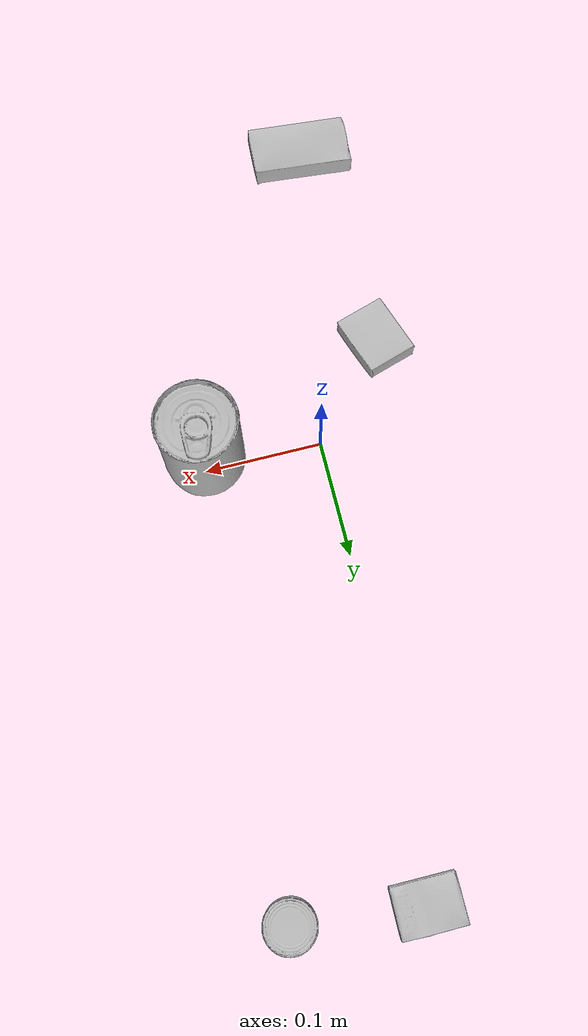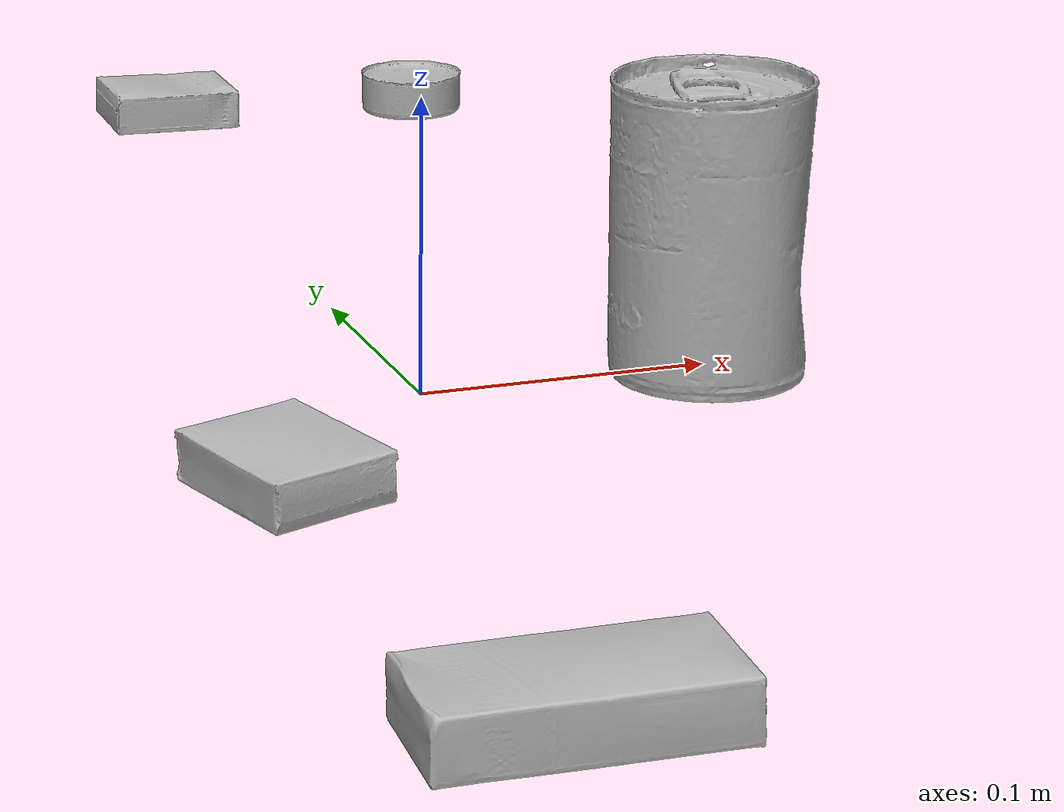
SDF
<sdf version="1.4">
  <world name="default">
    <light name="light1" type="point">
      <pose>0 0 1 0 0 0</pose>
      <diffuse>3 3 3 1</diffuse>
      <specular>3 3 3 1</specular>
    </light>
    <light name="light2" type="point">
      <pose>0 0.5 2 0 0 0</pose>
      <diffuse>1 1 1 1</diffuse>
      <specular>1 1 1 1</specular>
    </light>
    <light name="light3" type="point">
      <pose>0 0.5 2 0 0 0</pose>
      <diffuse>3 3 3 1</diffuse>
      <specular>3 3 3 1</specular>
    </light>
    <scene>
      <ambient>0.7 0.7 0.7</ambient>
    </scene>
    <model name="box1">
      <link name="link_box1">
        <collision name="default">
          <geometry>
            <mesh>
              <uri>model://cracker_box/collision_meshes/collision.obj</uri>
              <scale>0.25 0.25 0.25</scale>
            </mesh>
          </geometry>
          <surface>
            <friction>
              <ode>
                <mu>0.5</mu>
                <mu2>0.5</mu2>
              </ode>
            </friction>
          <contact>
        <ode>
            <max_vel>0</max_vel>
            <min_depth>0.0001</min_depth>
            <kp>1e8</kp>
        </ode>
    </contact></surface>
        </collision>
        <visual name="default">
          <geometry>
            <mesh>
              <uri>model://cracker_box/visual_meshes/visual.dae</uri>
              <scale>0.25 0.25 0.25</scale>
            </mesh>
          </geometry>
        </visual>
        <inertial>
          <mass>0.029061755165457726</mass>
          <pose>0.00023660456645302474 6.358561950037256e-05 -0.0004257383698131889 -0.0003162077745192934 -0.011106489600167671 0.002546795235645709</pose>
          <inertia>
            <ixx>4.620008e-06</ixx>
            <iyy>7.6285405e-06</iyy>
            <izz>1.0886628e-05</izz>
            <ixy>0</ixy>
            <ixz>0</ixz>
            <iyz>0</iyz>
          </inertia>
        </inertial>
      </link>
      <pose>0.012506213039159775 0.3784787356853485 0.009120449423789978 -0.011787999634539957 -0.007367144548591823 3.1334413562995778</pose>
    </model>
    <model name="box2">
      <link name="link_box2">
        <collision name="default">
          <geometry>
            <mesh>
              <uri>model://sugar_box/collision_meshes/collision.obj</uri>
              <scale>0.5 0.5 0.5</scale>
            </mesh>
          </geometry>
          <surface>
            <friction>
              <ode>
                <mu>0.5</mu>
                <mu2>0.5</mu2>
              </ode>
            </friction>
          <contact>
        <ode>
            <max_vel>0</max_vel>
            <min_depth>0.0001</min_depth>
            <kp>1e8</kp>
        </ode>
    </contact></surface>
        </collision>
        <visual name="default">
          <geometry>
            <mesh>
              <uri>model://sugar_box/visual_meshes/visual.dae</uri>
              <scale>0.5 0.5 0.5</scale>
            </mesh>
          </geometry>
        </visual>
        <inertial>
          <mass>0.08909860998392105</mass>
          <pose>0.0005171863595023751 1.924554817378521e-05 -0.00018182402709499002 -0.00040462606756407727 0.0010506635218583888 0.002615378789044619</pose>
          <inertia>
            <ixx>1.8559176e-05</ixx>
            <iyy>5.9987076e-05</iyy>
            <izz>7.181169e-05</izz>
            <ixy>0</ixy>
            <ixz>0</ixz>
            <iyz>0</iyz>
          </inertia>
        </inertial>
      </link>
      <pose>-0.05044139176607132 -0.27351006865501404 0.011399305425584316 0.0007746989090945622 -0.02343306054207281 -0.0723331562742666</pose>
    </model>
    <model name="box3">
      <link name="link_box3">
        <collision name="default">
          <geometry>
            <mesh>
              <uri>model://pudding_box/collision_meshes/collision.obj</uri>
              <scale>0.5 0.5 0.5</scale>
            </mesh>
          </geometry>
          <surface>
            <friction>
              <ode>
                <mu>0.5</mu>
                <mu2>0.5</mu2>
              </ode>
            </friction>
          <contact>
        <ode>
            <max_vel>0</max_vel>
            <min_depth>0.0001</min_depth>
            <kp>1e8</kp>
        </ode>
    </contact></surface>
        </collision>
        <visual name="default">
          <geometry>
            <mesh>
              <uri>model://pudding_box/visual_meshes/visual.dae</uri>
              <scale>0.5 0.5 0.5</scale>
            </mesh>
          </geometry>
        </visual>
        <inertial>
          <mass>0.058397307991981506</mass>
          <pose>0.00024474109522998333 0.000403394311433658 -0.0002594413817860186 0.005213099939270767 -0.006603797768571226 0.020079825168092046</pose>
          <inertia>
            <ixx>1.650379e-05</ixx>
            <iyy>1.1103868e-05</iyy>
            <izz>2.437216e-05</izz>
            <ixy>0</ixy>
            <ixz>0</ixz>
            <iyz>0</iyz>
          </inertia>
        </inertial>
      </link>
      <pose>-0.06938914954662323 -0.07940706610679626 0.009862902574241161 0.02234849302585805 -0.01139175035671792 0.31333921707708634</pose>
    </model>
    <model name="can1">
      <link name="link_can1">
        <collision name="default">
          <geometry>
            <mesh>
              <uri>model://tuna_fish_can/collision_meshes/collision.obj</uri>
              <scale>0.5 0.5 0.5</scale>
            </mesh>
          </geometry>
          <surface>
            <friction>
              <ode>
                <mu>0.5</mu>
                <mu2>0.5</mu2>
              </ode>
            </friction>
          <contact>
        <ode>
            <max_vel>0</max_vel>
            <min_depth>0.0001</min_depth>
            <kp>1e8</kp>
        </ode>
    </contact></surface>
        </collision>
        <visual name="default">
          <geometry>
            <mesh>
              <uri>model://tuna_fish_can/visual_meshes/visual.dae</uri>
              <scale>0.5 0.5 0.5</scale>
            </mesh>
          </geometry>
        </visual>
        <inertial>
          <mass>0.024247437715530396</mass>
          <pose>-2.0361860151751898e-05 -7.256063781824196e-06 -0.000526902440469712 -0.0017944785229743307 0.0001716120442354053 0.2405371667019961</pose>
          <inertia>
            <ixx>3.2782896e-06</ixx>
            <iyy>3.2646258e-06</iyy>
            <izz>5.609621e-06</izz>
            <ixy>0</ixy>
            <ixz>0</ixz>
            <iyz>0</iyz>
          </inertia>
        </inertial>
      </link>
      <pose>0.11780848354101181 0.36691606044769287 0.008519998751580715 -3.435791659045595e-08 -2.8880156938666432e-08 2.935708680258109</pose>
    </model>
    <model name="can2">
      <link name="link_can2">
        <collision name="default">
          <geometry>
            <mesh>
              <uri>model://tomato_soup_can/collision_meshes/collision.obj</uri>
              <scale>1.0 1.0 1.0</scale>
            </mesh>
          </geometry>
          <surface>
            <friction>
              <ode>
                <mu>0.5</mu>
                <mu2>0.5</mu2>
              </ode>
            </friction>
          <contact>
        <ode>
            <max_vel>0</max_vel>
            <min_depth>0.0001</min_depth>
            <kp>1e8</kp>
        </ode>
    </contact></surface>
        </collision>
        <visual name="default">
          <geometry>
            <mesh>
              <uri>model://tomato_soup_can/visual_meshes/visual.dae</uri>
              <scale>1.0 1.0 1.0</scale>
            </mesh>
          </geometry>
        </visual>
        <inertial>
          <mass>0.44329848885536194</mass>
          <pose>0.0001265227037947625 0.00010805520287249237 -0.0017973989015445113 0.007020066893531886 0.00042299576578658417 -0.009903435969571123</pose>
          <inertia>
            <ixx>0.00048603912</ixx>
            <iyy>0.0004832301</iyy>
            <izz>0.00025190957</izz>
            <ixy>0</ixy>
            <ixz>0</ixz>
            <iyz>0</iyz>
          </inertia>
        </inertial>
      </link>
      <pose>0.09717568010091782 -0.010276511311531067 0.051274001598358154 -7.321515150905013e-07 -8.927842597466941e-07 2.6993808308217258</pose>
    </model>
  <physics type="ode">
      <max_contacts>50</max_contacts>
      <ode>
        <solver>
          <type>quick</type>
          <iters>75</iters>
        </solver>
        <constraints>
          <contact_max_correcting_vel>0</contact_max_correcting_vel>
          <contact_surface_layer>0</contact_surface_layer>
        </constraints>
      </ode>
    </physics></world>
</sdf>
